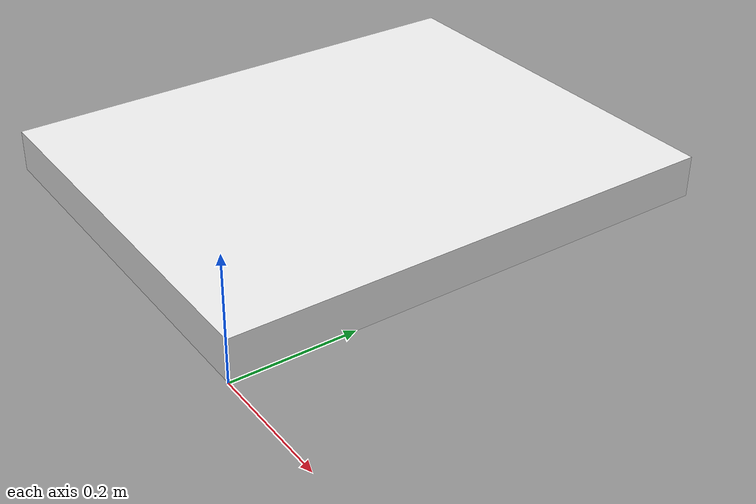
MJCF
<mujoco model="ben_table_ceiling">
  <asset>
    <mesh file="meshes/ben_table_ceiling.stl" name="ben_table_ceiling"/>
    <texture file="../textures/white-plaster.png" name="texplaster"/>
    <material name="plaster" reflectance="0.7" texrepeat="5 5" texture="texplaster" texuniform="true"/>
  </asset>
  <worldbody>
    <body name="ben_table_ceiling">
      <body name="collision">
        <geom pos="0 0 0" mesh="ben_table_ceiling" type="mesh" density="5000" group="1" material="plaster" condim="6"/>
      </body>
      <body name="visual">
        <geom pos="0 0 0" mesh="ben_table_ceiling" type="mesh" conaffinity="0" contype="0" group="0" mass="0.0001"/>
      </body>
      <site rgba="0 0 0 0" size="0.005" pos="0 0 -0.06" name="bottom_site"/>
      <site rgba="0 0 0 0" size="0.005" pos="0 0 0.04" name="top_site"/>
      <site rgba="0 0 0 0" size="0.005" pos="0.025 0.025 0" name="horizontal_radius_site"/>
    </body>
  </worldbody>
</mujoco>
